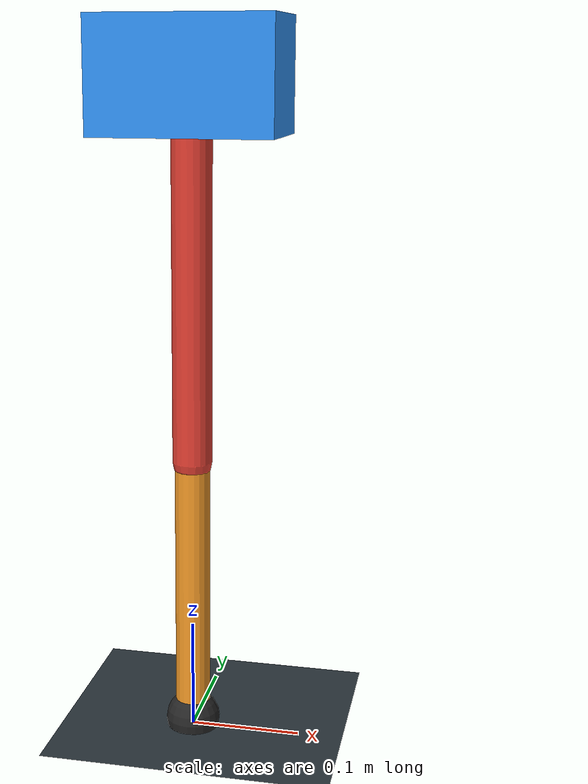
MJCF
<mujoco model="single_axis_two_bar">
  <compiler angle="radian" inertiafromgeom="true"/>
  <option timestep="0.001" integrator="implicitfast" gravity="0 0 -9.81"/>
  <default>
    <joint damping="0.08"/>
    <geom friction="1.2 0.01 0.0001" condim="3"/>
  </default>
  <worldbody>
    <geom name="floor" type="plane" size="5 5 0.1" rgba="0.18 0.22 0.25 1"/>
    <body name="carriage" pos="0 0 0.5972466317292568">
      <joint name="pole_slide" type="slide" axis="0 0 1"/>
      <geom name="payload" type="box" size="0.08 0.05 0.05" mass="3.1140168131664723" rgba="0.2 0.6 1 1"/>
      <body name="thigh" pos="0 0 0">
        <joint name="hip" type="hinge" axis="0 1 0"/>
        <geom name="thigh_link" type="capsule" fromto="0 0 0 0 0 -0.3393131847524424" size="0.018" mass="0.2417651277642685" rgba="0.9 0.25 0.2 1"/>
        <body name="shank" pos="0 0 -0.3393131847524424">
          <joint name="knee" type="hinge" axis="0 1 0"/>
          <geom name="shank_link" type="capsule" fromto="0 0 0 0 0 -0.25063179641174005" size="0.016" mass="0.17857846675035904" rgba="0.95 0.6 0.15 1"/>
          <geom name="foot" type="sphere" pos="0 0 -0.25063179641174005" size="0.025" mass="0.03" rgba="0.15 0.15 0.15 1"/>
          <site name="toe" pos="0 0 -0.25063179641174005" size="0.008"/>
        </body>
      </body>
    </body>
  </worldbody>
  <actuator>
    <motor name="hip_motor" joint="hip" ctrlrange="-60.0890366869009 60.0890366869009"/>
    <motor name="knee_motor" joint="knee" ctrlrange="-105.14016877810064 105.14016877810064"/>
  </actuator>
</mujoco>
